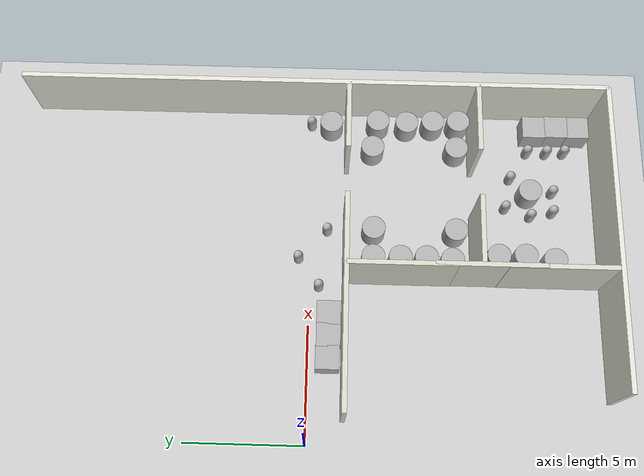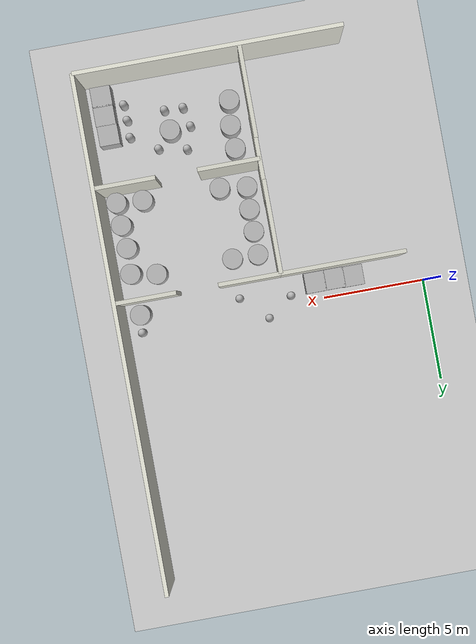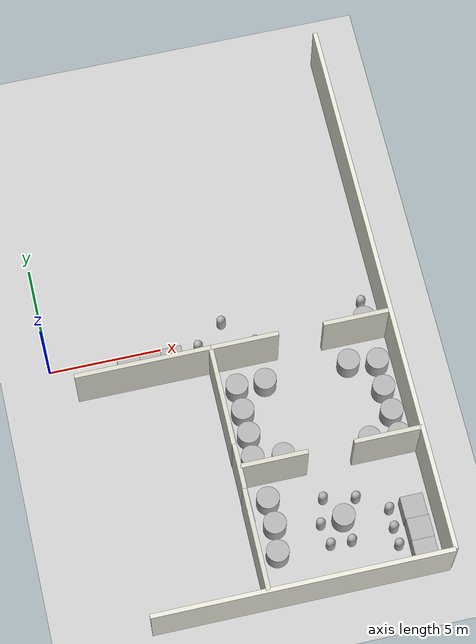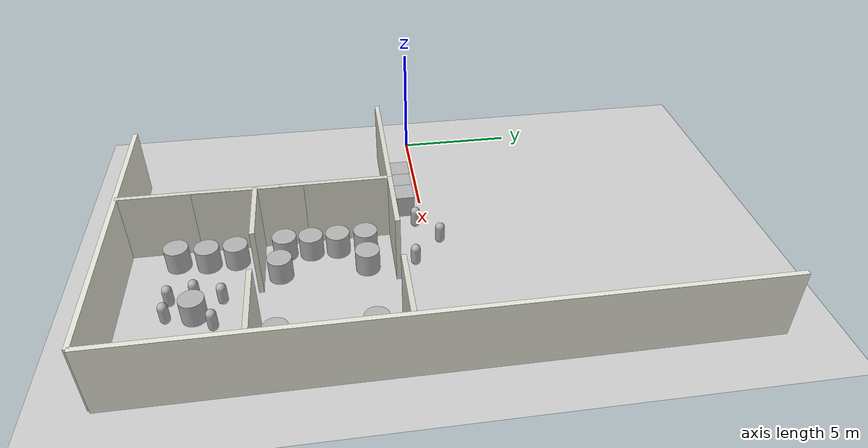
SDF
<sdf version="1.10">
 <world name="default">
  <model name="ground_plane">
   <static>true</static>
   <link name="link">
    <collision name="collision">
     <geometry><plane><normal>0 0 1</normal><size>100 100</size></plane></geometry>
    </collision>
    <visual name="visual">
     <geometry><plane><normal>0 0 1</normal><size>100 100</size></plane></geometry>
     <material>
      <ambient>0.800000012 0.800000012 0.800000012 1</ambient>
      <diffuse>0.800000012 0.800000012 0.800000012 1</diffuse>
      <specular>0.100000001 0.100000001 0.100000001 1</specular>
     </material>
    </visual>
    <inertial>
     <mass>1</mass>
     <inertia><ixx>1</ixx><ixy>0</ixy><ixz>0</ixz><iyy>1</iyy><iyz>0</iyz><izz>1</izz></inertia>
    </inertial>
   </link>
  </model>
  <model name="south_wall_east">
   <static>true</static>
   <pose>8.5 -12.5 1.5 0 0 0</pose>
   <link name="link">
    <collision name="collision"><geometry><box><size>13 0.20000000000000001 3</size></box></geometry></collision>
    <visual name="visual">
     <geometry><box><size>13 0.20000000000000001 3</size></box></geometry>
     <material>
      <ambient>0.899999976 0.899999976 0.850000024 1</ambient>
      <diffuse>0.899999976 0.899999976 0.850000024 1</diffuse>
     </material>
    </visual>
    <inertial>
     <mass>1</mass>
     <inertia><ixx>1</ixx><ixy>0</ixy><ixz>0</ixz><iyy>1</iyy><iyz>0</iyz><izz>1</izz></inertia>
    </inertial>
   </link>
  </model>
  <model name="east_wall">
   <static>true</static>
   <pose>15 0 1.5 0 0 0</pose>
   <link name="link">
    <collision name="collision"><geometry><box><size>0.20000000000000001 25 3</size></box></geometry></collision>
    <visual name="visual">
     <geometry><box><size>0.20000000000000001 25 3</size></box></geometry>
     <material>
      <ambient>0.899999976 0.899999976 0.850000024 1</ambient>
      <diffuse>0.899999976 0.899999976 0.850000024 1</diffuse>
     </material>
    </visual>
    <inertial>
     <mass>1</mass>
     <inertia><ixx>1</ixx><ixy>0</ixy><ixz>0</ixz><iyy>1</iyy><iyz>0</iyz><izz>1</izz></inertia>
    </inertial>
   </link>
  </model>
  <model name="v_wall_p7_s1">
   <static>true</static>
   <pose>7 -3.75 1.5 0 0 0</pose>
   <link name="link">
    <collision name="collision"><geometry><box><size>0.20000000000000001 4.5 3</size></box></geometry></collision>
    <visual name="visual">
     <geometry><box><size>0.20000000000000001 4.5 3</size></box></geometry>
     <material>
      <ambient>0.850000024 0.850000024 0.800000012 1</ambient>
      <diffuse>0.850000024 0.850000024 0.800000012 1</diffuse>
     </material>
    </visual>
    <inertial>
     <mass>1</mass>
     <inertia><ixx>1</ixx><ixy>0</ixy><ixz>0</ixz><iyy>1</iyy><iyz>0</iyz><izz>1</izz></inertia>
    </inertial>
   </link>
  </model>
  <model name="v_wall_p7_s2">
   <static>true</static>
   <pose>7 -10.25 1.5 0 0 0</pose>
   <link name="link">
    <collision name="collision"><geometry><box><size>0.20000000000000001 4.5 3</size></box></geometry></collision>
    <visual name="visual">
     <geometry><box><size>0.20000000000000001 4.5 3</size></box></geometry>
     <material>
      <ambient>0.850000024 0.850000024 0.800000012 1</ambient>
      <diffuse>0.850000024 0.850000024 0.800000012 1</diffuse>
     </material>
    </visual>
    <inertial>
     <mass>1</mass>
     <inertia><ixx>1</ixx><ixy>0</ixy><ixz>0</ixz><iyy>1</iyy><iyz>0</iyz><izz>1</izz></inertia>
    </inertial>
   </link>
  </model>
  <model name="h_wall_m1_5_seg2_2">
   <static>true</static>
   <pose>4 -1.5 1.5 0 0 0</pose>
   <link name="link">
    <collision name="collision"><geometry><box><size>6 0.20000000000000001 3</size></box></geometry></collision>
    <visual name="visual">
     <geometry><box><size>6 0.20000000000000001 3</size></box></geometry>
     <material>
      <ambient>0.850000024 0.850000024 0.800000012 1</ambient>
      <diffuse>0.850000024 0.850000024 0.800000012 1</diffuse>
     </material>
    </visual>
    <inertial>
     <mass>1</mass>
     <inertia><ixx>1</ixx><ixy>0</ixy><ixz>0</ixz><iyy>1</iyy><iyz>0</iyz><izz>1</izz></inertia>
    </inertial>
   </link>
  </model>
  <model name="h_wall_m1_5_seg3_1">
   <static>true</static>
   <pose>8.5 -1.5 1.5 0 0 0</pose>
   <link name="link">
    <collision name="collision"><geometry><box><size>3 0.20000000000000001 3</size></box></geometry></collision>
    <visual name="visual">
     <geometry><box><size>3 0.20000000000000001 3</size></box></geometry>
     <material>
      <ambient>0.850000024 0.850000024 0.800000012 1</ambient>
      <diffuse>0.850000024 0.850000024 0.800000012 1</diffuse>
     </material>
    </visual>
    <inertial>
     <mass>1</mass>
     <inertia><ixx>1</ixx><ixy>0</ixy><ixz>0</ixz><iyy>1</iyy><iyz>0</iyz><izz>1</izz></inertia>
    </inertial>
   </link>
  </model>
  <model name="h_wall_m1_5_seg3_2">
   <static>true</static>
   <pose>13.5 -1.5 1.5 0 0 0</pose>
   <link name="link">
    <collision name="collision"><geometry><box><size>3 0.20000000000000001 3</size></box></geometry></collision>
    <visual name="visual">
     <geometry><box><size>3 0.20000000000000001 3</size></box></geometry>
     <material>
      <ambient>0.850000024 0.850000024 0.800000012 1</ambient>
      <diffuse>0.850000024 0.850000024 0.800000012 1</diffuse>
     </material>
    </visual>
    <inertial>
     <mass>1</mass>
     <inertia><ixx>1</ixx><ixy>0</ixy><ixz>0</ixz><iyy>1</iyy><iyz>0</iyz><izz>1</izz></inertia>
    </inertial>
   </link>
  </model>
  <model name="h_wall_m7_seg2_1">
   <static>true</static>
   <pose>8.5 -7 1.5 0 0 0</pose>
   <link name="link">
    <collision name="collision"><geometry><box><size>3 0.20000000000000001 3</size></box></geometry></collision>
    <visual name="visual">
     <geometry><box><size>3 0.20000000000000001 3</size></box></geometry>
     <material>
      <ambient>0.850000024 0.850000024 0.800000012 1</ambient>
      <diffuse>0.850000024 0.850000024 0.800000012 1</diffuse>
     </material>
    </visual>
    <inertial>
     <mass>1</mass>
     <inertia><ixx>1</ixx><ixy>0</ixy><ixz>0</ixz><iyy>1</iyy><iyz>0</iyz><izz>1</izz></inertia>
    </inertial>
   </link>
  </model>
  <model name="h_wall_m7_seg2_2">
   <static>true</static>
   <pose>13.5 -7 1.5 0 0 0</pose>
   <link name="link">
    <collision name="collision"><geometry><box><size>3 0.20000000000000001 3</size></box></geometry></collision>
    <visual name="visual">
     <geometry><box><size>3 0.20000000000000001 3</size></box></geometry>
     <material>
      <ambient>0.850000024 0.850000024 0.800000012 1</ambient>
      <diffuse>0.850000024 0.850000024 0.800000012 1</diffuse>
     </material>
    </visual>
    <inertial>
     <mass>1</mass>
     <inertia><ixx>1</ixx><ixy>0</ixy><ixz>0</ixz><iyy>1</iyy><iyz>0</iyz><izz>1</izz></inertia>
    </inertial>
   </link>
  </model>
  <model name="v_wall_m7_n1_3">
   <static>true</static>
   <pose>7.0197264371027313 -7.2933113056837904 1.5 0 0 0</pose>
   <link name="link">
    <collision name="collision"><geometry><box><size>0.20000000000000001 4.5 3</size></box></geometry></collision>
    <visual name="visual">
     <geometry><box><size>0.20000000000000001 4.5 3</size></box></geometry>
     <material>
      <ambient>0.850000024 0.850000024 0.800000012 1</ambient>
      <diffuse>0.850000024 0.850000024 0.800000012 1</diffuse>
     </material>
    </visual>
    <inertial>
     <mass>1</mass>
     <inertia><ixx>1</ixx><ixy>0</ixy><ixz>0</ixz><iyy>1</iyy><iyz>0</iyz><izz>1</izz></inertia>
    </inertial>
   </link>
  </model>
  <model name="box_12">
   <static>true</static>
   <pose>14.073073331518845 -11.668733796166638 0.5 0 0 0</pose>
   <link name="box_link">
    <inertial>
     <inertia><ixx>0.16666</ixx><ixy>0</ixy><ixz>0</ixz><iyy>0.16666</iyy><iyz>0</iyz><izz>0.16666</izz></inertia>
     <mass>1</mass>
    </inertial>
    <collision name="box_collision"><geometry><box><size>1 1 1</size></box></geometry></collision>
    <visual name="box_visual">
     <geometry><box><size>1 1 1</size></box></geometry>
     <material>
      <ambient>0.300000012 0.300000012 0.300000012 1</ambient>
      <diffuse>0.699999988 0.699999988 0.699999988 1</diffuse>
      <specular>1 1 1 1</specular>
     </material>
    </visual>
   </link>
   <static>false</static>
  </model>
  <model name="box_3_5">
   <static>true</static>
   <pose>14.081306696169994 -10.735345926929272 0.5 0 0 0</pose>
   <link name="box_link">
    <inertial>
     <inertia><ixx>0.16666</ixx><ixy>0</ixy><ixz>0</ixz><iyy>0.16666</iyy><iyz>0</iyz><izz>0.16666</izz></inertia>
     <mass>1</mass>
    </inertial>
    <collision name="box_collision"><geometry><box><size>1 1 1</size></box></geometry></collision>
    <visual name="box_visual">
     <geometry><box><size>1 1 1</size></box></geometry>
     <material>
      <ambient>0.300000012 0.300000012 0.300000012 1</ambient>
      <diffuse>0.699999988 0.699999988 0.699999988 1</diffuse>
      <specular>1 1 1 1</specular>
     </material>
    </visual>
   </link>
   <static>false</static>
  </model>
  <model name="box_3_6">
   <static>true</static>
   <pose>14.056056438638677 -9.7546844689053689 0.5 0 0 0</pose>
   <link name="box_link">
    <inertial>
     <inertia><ixx>0.16666</ixx><ixy>0</ixy><ixz>0</ixz><iyy>0.16666</iyy><iyz>0</iyz><izz>0.16666</izz></inertia>
     <mass>1</mass>
    </inertial>
    <collision name="box_collision"><geometry><box><size>1 1 1</size></box></geometry></collision>
    <visual name="box_visual">
     <geometry><box><size>1 1 1</size></box></geometry>
     <material>
      <ambient>0.300000012 0.300000012 0.300000012 1</ambient>
      <diffuse>0.699999988 0.699999988 0.699999988 1</diffuse>
      <specular>1 1 1 1</specular>
     </material>
    </visual>
   </link>
   <static>false</static>
  </model>
  <model name="capsule_21">
   <static>true</static>
   <pose>13.064744238938513 -9.5094486178436206 0.5 0 0 0</pose>
   <link name="capsule_link">
    <inertial>
     <inertia>
      <ixx>0.074153999999999998</ixx>
      <ixy>0</ixy>
      <ixz>0</ixz>
      <iyy>0.074153999999999998</iyy>
      <iyz>0</iyz>
      <izz>0.018769000000000001</izz>
     </inertia>
     <mass>1</mass>
    </inertial>
    <collision name="capsule_collision">
     <geometry>
      <capsule><radius>0.20000000000000001</radius><length>0.59999999999999998</length></capsule>
     </geometry>
    </collision>
    <visual name="capsule_visual">
     <geometry>
      <capsule><radius>0.20000000000000001</radius><length>0.59999999999999998</length></capsule>
     </geometry>
     <material>
      <ambient>0.300000012 0.300000012 0.300000012 1</ambient>
      <diffuse>0.699999988 0.699999988 0.699999988 1</diffuse>
      <specular>1 1 1 1</specular>
     </material>
    </visual>
   </link>
   <static>false</static>
  </model>
  <model name="capsule_22">
   <static>true</static>
   <pose>13.056374130086542 -10.35986678764125 0.5 0 0 0</pose>
   <link name="capsule_link">
    <inertial>
     <inertia>
      <ixx>0.074153999999999998</ixx>
      <ixy>0</ixy>
      <ixz>0</ixz>
      <iyy>0.074153999999999998</iyy>
      <iyz>0</iyz>
      <izz>0.018769000000000001</izz>
     </inertia>
     <mass>1</mass>
    </inertial>
    <collision name="capsule_collision">
     <geometry>
      <capsule><radius>0.20000000000000001</radius><length>0.59999999999999998</length></capsule>
     </geometry>
    </collision>
    <visual name="capsule_visual">
     <geometry>
      <capsule><radius>0.20000000000000001</radius><length>0.59999999999999998</length></capsule>
     </geometry>
     <material>
      <ambient>0.300000012 0.300000012 0.300000012 1</ambient>
      <diffuse>0.699999988 0.699999988 0.699999988 1</diffuse>
      <specular>1 1 1 1</specular>
     </material>
    </visual>
   </link>
   <static>false</static>
  </model>
  <model name="capsule_23">
   <static>true</static>
   <pose>13.090325655017166 -11.144845383740266 0.5 0 0 0</pose>
   <link name="capsule_link">
    <inertial>
     <inertia>
      <ixx>0.074153999999999998</ixx>
      <ixy>0</ixy>
      <ixz>0</ixz>
      <iyy>0.074153999999999998</iyy>
      <iyz>0</iyz>
      <izz>0.018769000000000001</izz>
     </inertia>
     <mass>1</mass>
    </inertial>
    <collision name="capsule_collision">
     <geometry>
      <capsule><radius>0.20000000000000001</radius><length>0.59999999999999998</length></capsule>
     </geometry>
    </collision>
    <visual name="capsule_visual">
     <geometry>
      <capsule><radius>0.20000000000000001</radius><length>0.59999999999999998</length></capsule>
     </geometry>
     <material>
      <ambient>0.300000012 0.300000012 0.300000012 1</ambient>
      <diffuse>0.699999988 0.699999988 0.699999988 1</diffuse>
      <specular>1 1 1 1</specular>
     </material>
    </visual>
   </link>
   <static>false</static>
  </model>
  <model name="cylinder_3">
   <static>true</static>
   <pose>8.0501627275928787 -8.0196102178127511 0.5 0 0 0</pose>
   <link name="cylinder_link">
    <inertial>
     <inertia>
      <ixx>0.14580000000000001</ixx>
      <ixy>0</ixy>
      <ixz>0</ixz>
      <iyy>0.14580000000000001</iyy>
      <iyz>0</iyz>
      <izz>0.125</izz>
     </inertia>
     <mass>1</mass>
    </inertial>
    <collision name="cylinder_collision">
     <geometry><cylinder><radius>0.5</radius><length>1</length></cylinder></geometry>
    </collision>
    <visual name="cylinder_visual">
     <geometry><cylinder><radius>0.5</radius><length>1</length></cylinder></geometry>
     <material>
      <ambient>0.300000012 0.300000012 0.300000012 1</ambient>
      <diffuse>0.699999988 0.699999988 0.699999988 1</diffuse>
      <specular>1 1 1 1</specular>
     </material>
    </visual>
   </link>
   <static>false</static>
  </model>
  <model name="cylinder_4">
   <static>true</static>
   <pose>8.0849967758680457 -9.1682031683613072 0.5 0 0 0</pose>
   <link name="cylinder_link">
    <inertial>
     <inertia>
      <ixx>0.14580000000000001</ixx>
      <ixy>0</ixy>
      <ixz>0</ixz>
      <iyy>0.14580000000000001</iyy>
      <iyz>0</iyz>
      <izz>0.125</izz>
     </inertia>
     <mass>1</mass>
    </inertial>
    <collision name="cylinder_collision">
     <geometry><cylinder><radius>0.5</radius><length>1</length></cylinder></geometry>
    </collision>
    <visual name="cylinder_visual">
     <geometry><cylinder><radius>0.5</radius><length>1</length></cylinder></geometry>
     <material>
      <ambient>0.300000012 0.300000012 0.300000012 1</ambient>
      <diffuse>0.699999988 0.699999988 0.699999988 1</diffuse>
      <specular>1 1 1 1</specular>
     </material>
    </visual>
   </link>
   <static>false</static>
  </model>
  <model name="cylinder_5">
   <static>true</static>
   <pose>7.9213094957686234 -10.402982745516073 0.5 0 0 0</pose>
   <link name="cylinder_link">
    <inertial>
     <inertia>
      <ixx>0.14580000000000001</ixx>
      <ixy>0</ixy>
      <ixz>0</ixz>
      <iyy>0.14580000000000001</iyy>
      <iyz>0</iyz>
      <izz>0.125</izz>
     </inertia>
     <mass>1</mass>
    </inertial>
    <collision name="cylinder_collision">
     <geometry><cylinder><radius>0.5</radius><length>1</length></cylinder></geometry>
    </collision>
    <visual name="cylinder_visual">
     <geometry><cylinder><radius>0.5</radius><length>1</length></cylinder></geometry>
     <material>
      <ambient>0.300000012 0.300000012 0.300000012 1</ambient>
      <diffuse>0.699999988 0.699999988 0.699999988 1</diffuse>
      <specular>1 1 1 1</specular>
     </material>
    </visual>
   </link>
   <static>false</static>
  </model>
  <model name="cylinder_6">
   <static>true</static>
   <pose>11.043829284390847 -9.4758004201801587 0.5 0 0 0</pose>
   <link name="cylinder_link">
    <inertial>
     <inertia>
      <ixx>0.14580000000000001</ixx>
      <ixy>0</ixy>
      <ixz>0</ixz>
      <iyy>0.14580000000000001</iyy>
      <iyz>0</iyz>
      <izz>0.125</izz>
     </inertia>
     <mass>1</mass>
    </inertial>
    <collision name="cylinder_collision">
     <geometry><cylinder><radius>0.5</radius><length>1</length></cylinder></geometry>
    </collision>
    <visual name="cylinder_visual">
     <geometry><cylinder><radius>0.5</radius><length>1</length></cylinder></geometry>
     <material>
      <ambient>0.300000012 0.300000012 0.300000012 1</ambient>
      <diffuse>0.699999988 0.699999988 0.699999988 1</diffuse>
      <specular>1 1 1 1</specular>
     </material>
    </visual>
   </link>
   <static>false</static>
  </model>
  <model name="capsule_24">
   <static>true</static>
   <pose>10.232319012312779 -10.493727276224512 0.5 0 0 0</pose>
   <link name="capsule_link">
    <inertial>
     <inertia>
      <ixx>0.074153999999999998</ixx>
      <ixy>0</ixy>
      <ixz>0</ixz>
      <iyy>0.074153999999999998</iyy>
      <iyz>0</iyz>
      <izz>0.018769000000000001</izz>
     </inertia>
     <mass>1</mass>
    </inertial>
    <collision name="capsule_collision">
     <geometry>
      <capsule><radius>0.20000000000000001</radius><length>0.59999999999999998</length></capsule>
     </geometry>
    </collision>
    <visual name="capsule_visual">
     <geometry>
      <capsule><radius>0.20000000000000001</radius><length>0.59999999999999998</length></capsule>
     </geometry>
     <material>
      <ambient>0.300000012 0.300000012 0.300000012 1</ambient>
      <diffuse>0.699999988 0.699999988 0.699999988 1</diffuse>
      <specular>1 1 1 1</specular>
     </material>
    </visual>
   </link>
   <static>false</static>
  </model>
  <model name="capsule_25">
   <static>true</static>
   <pose>11.162278100604359 -10.530229651169167 0.5 0 0 0</pose>
   <link name="capsule_link">
    <inertial>
     <inertia>
      <ixx>0.074153999999999998</ixx>
      <ixy>0</ixy>
      <ixz>0</ixz>
      <iyy>0.074153999999999998</iyy>
      <iyz>0</iyz>
      <izz>0.018769000000000001</izz>
     </inertia>
     <mass>1</mass>
    </inertial>
    <collision name="capsule_collision">
     <geometry>
      <capsule><radius>0.20000000000000001</radius><length>0.59999999999999998</length></capsule>
     </geometry>
    </collision>
    <visual name="capsule_visual">
     <geometry>
      <capsule><radius>0.20000000000000001</radius><length>0.59999999999999998</length></capsule>
     </geometry>
     <material>
      <ambient>0.300000012 0.300000012 0.300000012 1</ambient>
      <diffuse>0.699999988 0.699999988 0.699999988 1</diffuse>
      <specular>1 1 1 1</specular>
     </material>
    </visual>
   </link>
   <static>false</static>
  </model>
  <model name="capsule_26">
   <static>true</static>
   <pose>10.03167538012768 -9.5282222881643257 0.5 0 0 0</pose>
   <link name="capsule_link">
    <inertial>
     <inertia>
      <ixx>0.074153999999999998</ixx>
      <ixy>0</ixy>
      <ixz>0</ixz>
      <iyy>0.074153999999999998</iyy>
      <iyz>0</iyz>
      <izz>0.018769000000000001</izz>
     </inertia>
     <mass>1</mass>
    </inertial>
    <collision name="capsule_collision">
     <geometry>
      <capsule><radius>0.20000000000000001</radius><length>0.59999999999999998</length></capsule>
     </geometry>
    </collision>
    <visual name="capsule_visual">
     <geometry>
      <capsule><radius>0.20000000000000001</radius><length>0.59999999999999998</length></capsule>
     </geometry>
     <material>
      <ambient>0.300000012 0.300000012 0.300000012 1</ambient>
      <diffuse>0.699999988 0.699999988 0.699999988 1</diffuse>
      <specular>1 1 1 1</specular>
     </material>
    </visual>
   </link>
   <static>false</static>
  </model>
  <model name="capsule_27">
   <static>true</static>
   <pose>10.390052392073933 -8.4354350797360524 0.5 0 0 0</pose>
   <link name="capsule_link">
    <inertial>
     <inertia>
      <ixx>0.074153999999999998</ixx>
      <ixy>0</ixy>
      <ixz>0</ixz>
      <iyy>0.074153999999999998</iyy>
      <iyz>0</iyz>
      <izz>0.018769000000000001</izz>
     </inertia>
     <mass>1</mass>
    </inertial>
    <collision name="capsule_collision">
     <geometry>
      <capsule><radius>0.20000000000000001</radius><length>0.59999999999999998</length></capsule>
     </geometry>
    </collision>
    <visual name="capsule_visual">
     <geometry>
      <capsule><radius>0.20000000000000001</radius><length>0.59999999999999998</length></capsule>
     </geometry>
     <material>
      <ambient>0.300000012 0.300000012 0.300000012 1</ambient>
      <diffuse>0.699999988 0.699999988 0.699999988 1</diffuse>
      <specular>1 1 1 1</specular>
     </material>
    </visual>
   </link>
   <static>false</static>
  </model>
  <model name="capsule_28">
   <static>true</static>
   <pose>11.779381703018867 -8.6991829068663513 0.5 0 0 0</pose>
   <link name="capsule_link">
    <inertial>
     <inertia>
      <ixx>0.074153999999999998</ixx>
      <ixy>0</ixy>
      <ixz>0</ixz>
      <iyy>0.074153999999999998</iyy>
      <iyz>0</iyz>
      <izz>0.018769000000000001</izz>
     </inertia>
     <mass>1</mass>
    </inertial>
    <collision name="capsule_collision">
     <geometry>
      <capsule><radius>0.20000000000000001</radius><length>0.59999999999999998</length></capsule>
     </geometry>
    </collision>
    <visual name="capsule_visual">
     <geometry>
      <capsule><radius>0.20000000000000001</radius><length>0.59999999999999998</length></capsule>
     </geometry>
     <material>
      <ambient>0.300000012 0.300000012 0.300000012 1</ambient>
      <diffuse>0.699999988 0.699999988 0.699999988 1</diffuse>
      <specular>1 1 1 1</specular>
     </material>
    </visual>
   </link>
   <static>false</static>
  </model>
  <model name="cylinder_9">
   <static>true</static>
   <pose>14.158900260925293 -4.1375298500061035 0.5 0 0 0</pose>
   <link name="cylinder_link">
    <inertial>
     <inertia>
      <ixx>0.14580000000000001</ixx>
      <ixy>0</ixy>
      <ixz>0</ixz>
      <iyy>0.14580000000000001</iyy>
      <iyz>0</iyz>
      <izz>0.125</izz>
     </inertia>
     <mass>1</mass>
    </inertial>
    <collision name="cylinder_collision">
     <geometry><cylinder><radius>0.5</radius><length>1</length></cylinder></geometry>
    </collision>
    <visual name="cylinder_visual">
     <geometry><cylinder><radius>0.5</radius><length>1</length></cylinder></geometry>
     <material>
      <ambient>0.300000012 0.300000012 0.300000012 1</ambient>
      <diffuse>0.699999988 0.699999988 0.699999988 1</diffuse>
      <specular>1 1 1 1</specular>
     </material>
    </visual>
   </link>
   <static>false</static>
  </model>
  <model name="cylinder_10">
   <static>true</static>
   <pose>14.232614517211914 -5.2915301322937012 0.5 0 0 0</pose>
   <link name="cylinder_link">
    <inertial>
     <inertia>
      <ixx>0.14580000000000001</ixx>
      <ixy>0</ixy>
      <ixz>0</ixz>
      <iyy>0.14580000000000001</iyy>
      <iyz>0</iyz>
      <izz>0.125</izz>
     </inertia>
     <mass>1</mass>
    </inertial>
    <collision name="cylinder_collision">
     <geometry><cylinder><radius>0.5</radius><length>1</length></cylinder></geometry>
    </collision>
    <visual name="cylinder_visual">
     <geometry><cylinder><radius>0.5</radius><length>1</length></cylinder></geometry>
     <material>
      <ambient>0.300000012 0.300000012 0.300000012 1</ambient>
      <diffuse>0.699999988 0.699999988 0.699999988 1</diffuse>
      <specular>1 1 1 1</specular>
     </material>
    </visual>
   </link>
   <static>false</static>
  </model>
  <model name="cylinder_11">
   <static>true</static>
   <pose>7.8997302055358887 -4.9542403221130371 0.5 0 0 0</pose>
   <link name="cylinder_link">
    <inertial>
     <inertia>
      <ixx>0.14580000000000001</ixx>
      <ixy>0</ixy>
      <ixz>0</ixz>
      <iyy>0.14580000000000001</iyy>
      <iyz>0</iyz>
      <izz>0.125</izz>
     </inertia>
     <mass>1</mass>
    </inertial>
    <collision name="cylinder_collision">
     <geometry><cylinder><radius>0.5</radius><length>1</length></cylinder></geometry>
    </collision>
    <visual name="cylinder_visual">
     <geometry><cylinder><radius>0.5</radius><length>1</length></cylinder></geometry>
     <material>
      <ambient>0.300000012 0.300000012 0.300000012 1</ambient>
      <diffuse>0.699999988 0.699999988 0.699999988 1</diffuse>
      <specular>1 1 1 1</specular>
     </material>
    </visual>
   </link>
   <static>false</static>
  </model>
  <model name="cylinder_12">
   <static>true</static>
   <pose>7.8877081871032715 -3.845789909362793 0.5 0 0 0</pose>
   <link name="cylinder_link">
    <inertial>
     <inertia>
      <ixx>0.14580000000000001</ixx>
      <ixy>0</ixy>
      <ixz>0</ixz>
      <iyy>0.14580000000000001</iyy>
      <iyz>0</iyz>
      <izz>0.125</izz>
     </inertia>
     <mass>1</mass>
    </inertial>
    <collision name="cylinder_collision">
     <geometry><cylinder><radius>0.5</radius><length>1</length></cylinder></geometry>
    </collision>
    <visual name="cylinder_visual">
     <geometry><cylinder><radius>0.5</radius><length>1</length></cylinder></geometry>
     <material>
      <ambient>0.300000012 0.300000012 0.300000012 1</ambient>
      <diffuse>0.699999988 0.699999988 0.699999988 1</diffuse>
      <specular>1 1 1 1</specular>
     </material>
    </visual>
   </link>
   <static>false</static>
  </model>
  <model name="cylinder_13">
   <static>true</static>
   <pose>14.268958569254883 -6.4152031573348225 0.5 0 0 0</pose>
   <link name="cylinder_link">
    <inertial>
     <inertia>
      <ixx>0.14580000000000001</ixx>
      <ixy>0</ixy>
      <ixz>0</ixz>
      <iyy>0.14580000000000001</iyy>
      <iyz>0</iyz>
      <izz>0.125</izz>
     </inertia>
     <mass>1</mass>
    </inertial>
    <collision name="cylinder_collision">
     <geometry><cylinder><radius>0.5</radius><length>1</length></cylinder></geometry>
    </collision>
    <visual name="cylinder_visual">
     <geometry><cylinder><radius>0.5</radius><length>1</length></cylinder></geometry>
     <material>
      <ambient>0.300000012 0.300000012 0.300000012 1</ambient>
      <diffuse>0.699999988 0.699999988 0.699999988 1</diffuse>
      <specular>1 1 1 1</specular>
     </material>
    </visual>
   </link>
   <static>false</static>
  </model>
  <model name="cylinder_14">
   <static>true</static>
   <pose>12.977344621161496 -6.3133784102681494 0.5 0 0 0</pose>
   <link name="cylinder_link">
    <inertial>
     <inertia>
      <ixx>0.14580000000000001</ixx>
      <ixy>0</ixy>
      <ixz>0</ixz>
      <iyy>0.14580000000000001</iyy>
      <iyz>0</iyz>
      <izz>0.125</izz>
     </inertia>
     <mass>1</mass>
    </inertial>
    <collision name="cylinder_collision">
     <geometry><cylinder><radius>0.5</radius><length>1</length></cylinder></geometry>
    </collision>
    <visual name="cylinder_visual">
     <geometry><cylinder><radius>0.5</radius><length>1</length></cylinder></geometry>
     <material>
      <ambient>0.300000012 0.300000012 0.300000012 1</ambient>
      <diffuse>0.699999988 0.699999988 0.699999988 1</diffuse>
      <specular>1 1 1 1</specular>
     </material>
    </visual>
   </link>
   <static>false</static>
  </model>
  <model name="cylinder_15">
   <static>true</static>
   <pose>14.211982195486677 -2.8589169850533498 0.5 0 0 0</pose>
   <link name="cylinder_link">
    <inertial>
     <inertia>
      <ixx>0.14580000000000001</ixx>
      <ixy>0</ixy>
      <ixz>0</ixz>
      <iyy>0.14580000000000001</iyy>
      <iyz>0</iyz>
      <izz>0.125</izz>
     </inertia>
     <mass>1</mass>
    </inertial>
    <collision name="cylinder_collision">
     <geometry><cylinder><radius>0.5</radius><length>1</length></cylinder></geometry>
    </collision>
    <visual name="cylinder_visual">
     <geometry><cylinder><radius>0.5</radius><length>1</length></cylinder></geometry>
     <material>
      <ambient>0.300000012 0.300000012 0.300000012 1</ambient>
      <diffuse>0.699999988 0.699999988 0.699999988 1</diffuse>
      <specular>1 1 1 1</specular>
     </material>
    </visual>
   </link>
   <static>false</static>
  </model>
  <model name="cylinder_16">
   <static>true</static>
   <pose>12.945903256641362 -2.6314177905810268 0.5 0 0 0</pose>
   <link name="cylinder_link">
    <inertial>
     <inertia>
      <ixx>0.14580000000000001</ixx>
      <ixy>0</ixy>
      <ixz>0</ixz>
      <iyy>0.14580000000000001</iyy>
      <iyz>0</iyz>
      <izz>0.125</izz>
     </inertia>
     <mass>1</mass>
    </inertial>
    <collision name="cylinder_collision">
     <geometry><cylinder><radius>0.5</radius><length>1</length></cylinder></geometry>
    </collision>
    <visual name="cylinder_visual">
     <geometry><cylinder><radius>0.5</radius><length>1</length></cylinder></geometry>
     <material>
      <ambient>0.300000012 0.300000012 0.300000012 1</ambient>
      <diffuse>0.699999988 0.699999988 0.699999988 1</diffuse>
      <specular>1 1 1 1</specular>
     </material>
    </visual>
   </link>
   <static>false</static>
  </model>
  <model name="cylinder_17">
   <static>true</static>
   <pose>7.8226368271812952 -6.0493471493061328 0.5 0 0 0</pose>
   <link name="cylinder_link">
    <inertial>
     <inertia>
      <ixx>0.14580000000000001</ixx>
      <ixy>0</ixy>
      <ixz>0</ixz>
      <iyy>0.14580000000000001</iyy>
      <iyz>0</iyz>
      <izz>0.125</izz>
     </inertia>
     <mass>1</mass>
    </inertial>
    <collision name="cylinder_collision">
     <geometry><cylinder><radius>0.5</radius><length>1</length></cylinder></geometry>
    </collision>
    <visual name="cylinder_visual">
     <geometry><cylinder><radius>0.5</radius><length>1</length></cylinder></geometry>
     <material>
      <ambient>0.300000012 0.300000012 0.300000012 1</ambient>
      <diffuse>0.699999988 0.699999988 0.699999988 1</diffuse>
      <specular>1 1 1 1</specular>
     </material>
    </visual>
   </link>
   <static>false</static>
  </model>
  <model name="cylinder_18">
   <static>true</static>
   <pose>9.1533691017740821 -6.2241319632907848 0.5 0 0 0</pose>
   <link name="cylinder_link">
    <inertial>
     <inertia>
      <ixx>0.14580000000000001</ixx>
      <ixy>0</ixy>
      <ixz>0</ixz>
      <iyy>0.14580000000000001</iyy>
      <iyz>0</iyz>
      <izz>0.125</izz>
     </inertia>
     <mass>1</mass>
    </inertial>
    <collision name="cylinder_collision">
     <geometry><cylinder><radius>0.5</radius><length>1</length></cylinder></geometry>
    </collision>
    <visual name="cylinder_visual">
     <geometry><cylinder><radius>0.5</radius><length>1</length></cylinder></geometry>
     <material>
      <ambient>0.300000012 0.300000012 0.300000012 1</ambient>
      <diffuse>0.699999988 0.699999988 0.699999988 1</diffuse>
      <specular>1 1 1 1</specular>
     </material>
    </visual>
   </link>
   <static>false</static>
  </model>
  <model name="cylinder_19">
   <static>true</static>
   <pose>7.8905374164155386 -2.6828820610834816 0.5 0 0 0</pose>
   <link name="cylinder_link">
    <inertial>
     <inertia>
      <ixx>0.14580000000000001</ixx>
      <ixy>0</ixy>
      <ixz>0</ixz>
      <iyy>0.14580000000000001</iyy>
      <iyz>0</iyz>
      <izz>0.125</izz>
     </inertia>
     <mass>1</mass>
    </inertial>
    <collision name="cylinder_collision">
     <geometry><cylinder><radius>0.5</radius><length>1</length></cylinder></geometry>
    </collision>
    <visual name="cylinder_visual">
     <geometry><cylinder><radius>0.5</radius><length>1</length></cylinder></geometry>
     <material>
      <ambient>0.300000012 0.300000012 0.300000012 1</ambient>
      <diffuse>0.699999988 0.699999988 0.699999988 1</diffuse>
      <specular>1 1 1 1</specular>
     </material>
    </visual>
   </link>
   <static>false</static>
  </model>
  <model name="cylinder_20">
   <static>true</static>
   <pose>9.1606431253359197 -2.6968057470853637 0.5 0 0 0</pose>
   <link name="cylinder_link">
    <inertial>
     <inertia>
      <ixx>0.14580000000000001</ixx>
      <ixy>0</ixy>
      <ixz>0</ixz>
      <iyy>0.14580000000000001</iyy>
      <iyz>0</iyz>
      <izz>0.125</izz>
     </inertia>
     <mass>1</mass>
    </inertial>
    <collision name="cylinder_collision">
     <geometry><cylinder><radius>0.5</radius><length>1</length></cylinder></geometry>
    </collision>
    <visual name="cylinder_visual">
     <geometry><cylinder><radius>0.5</radius><length>1</length></cylinder></geometry>
     <material>
      <ambient>0.300000012 0.300000012 0.300000012 1</ambient>
      <diffuse>0.699999988 0.699999988 0.699999988 1</diffuse>
      <specular>1 1 1 1</specular>
     </material>
    </visual>
   </link>
   <static>false</static>
  </model>
  <model name="cylinder_21">
   <static>true</static>
   <pose>14.104665057509658 -0.79541571133822542 0.5 0 0 0</pose>
   <link name="cylinder_link">
    <inertial>
     <inertia>
      <ixx>0.14580000000000001</ixx>
      <ixy>0</ixy>
      <ixz>0</ixz>
      <iyy>0.14580000000000001</iyy>
      <iyz>0</iyz>
      <izz>0.125</izz>
     </inertia>
     <mass>1</mass>
    </inertial>
    <collision name="cylinder_collision">
     <geometry><cylinder><radius>0.5</radius><length>1</length></cylinder></geometry>
    </collision>
    <visual name="cylinder_visual">
     <geometry><cylinder><radius>0.5</radius><length>1</length></cylinder></geometry>
     <material>
      <ambient>0.300000012 0.300000012 0.300000012 1</ambient>
      <diffuse>0.699999988 0.699999988 0.699999988 1</diffuse>
      <specular>1 1 1 1</specular>
     </material>
    </visual>
   </link>
   <static>false</static>
  </model>
  <model name="capsule_38">
   <static>true</static>
   <pose>14.194023380417505 0.081140383250723147 0.5 0 0 0</pose>
   <link name="capsule_link">
    <inertial>
     <inertia>
      <ixx>0.074153999999999998</ixx>
      <ixy>0</ixy>
      <ixz>0</ixz>
      <iyy>0.074153999999999998</iyy>
      <iyz>0</iyz>
      <izz>0.018769000000000001</izz>
     </inertia>
     <mass>1</mass>
    </inertial>
    <collision name="capsule_collision">
     <geometry>
      <capsule><radius>0.20000000000000001</radius><length>0.59999999999999998</length></capsule>
     </geometry>
    </collision>
    <visual name="capsule_visual">
     <geometry>
      <capsule><radius>0.20000000000000001</radius><length>0.59999999999999998</length></capsule>
     </geometry>
     <material>
      <ambient>0.300000012 0.300000012 0.300000012 1</ambient>
      <diffuse>0.699999988 0.699999988 0.699999988 1</diffuse>
      <specular>1 1 1 1</specular>
     </material>
    </visual>
   </link>
   <static>false</static>
  </model>
  <model name="capsule_39">
   <static>true</static>
   <pose>9.1675946226729614 -0.71528049761147461 0.5 0 0 0</pose>
   <link name="capsule_link">
    <inertial>
     <inertia>
      <ixx>0.074153999999999998</ixx>
      <ixy>0</ixy>
      <ixz>0</ixz>
      <iyy>0.074153999999999998</iyy>
      <iyz>0</iyz>
      <izz>0.018769000000000001</izz>
     </inertia>
     <mass>1</mass>
    </inertial>
    <collision name="capsule_collision">
     <geometry>
      <capsule><radius>0.20000000000000001</radius><length>0.59999999999999998</length></capsule>
     </geometry>
    </collision>
    <visual name="capsule_visual">
     <geometry>
      <capsule><radius>0.20000000000000001</radius><length>0.59999999999999998</length></capsule>
     </geometry>
     <material>
      <ambient>0.300000012 0.300000012 0.300000012 1</ambient>
      <diffuse>0.699999988 0.699999988 0.699999988 1</diffuse>
      <specular>1 1 1 1</specular>
     </material>
    </visual>
   </link>
   <static>false</static>
  </model>
  <model name="capsule_40">
   <static>true</static>
   <pose>7.8921537142289733 0.49312871069406738 0.5 0 0 0</pose>
   <link name="capsule_link">
    <inertial>
     <inertia>
      <ixx>0.074153999999999998</ixx>
      <ixy>0</ixy>
      <ixz>0</ixz>
      <iyy>0.074153999999999998</iyy>
      <iyz>0</iyz>
      <izz>0.018769000000000001</izz>
     </inertia>
     <mass>1</mass>
    </inertial>
    <collision name="capsule_collision">
     <geometry>
      <capsule><radius>0.20000000000000001</radius><length>0.59999999999999998</length></capsule>
     </geometry>
    </collision>
    <visual name="capsule_visual">
     <geometry>
      <capsule><radius>0.20000000000000001</radius><length>0.59999999999999998</length></capsule>
     </geometry>
     <material>
      <ambient>0.300000012 0.300000012 0.300000012 1</ambient>
      <diffuse>0.699999988 0.699999988 0.699999988 1</diffuse>
      <specular>1 1 1 1</specular>
     </material>
    </visual>
   </link>
   <static>false</static>
  </model>
  <model name="capsule_41">
   <static>true</static>
   <pose>6.6489490011881429 -0.40449055287976954 0.5 0 0 0</pose>
   <link name="capsule_link">
    <inertial>
     <inertia>
      <ixx>0.074153999999999998</ixx>
      <ixy>0</ixy>
      <ixz>0</ixz>
      <iyy>0.074153999999999998</iyy>
      <iyz>0</iyz>
      <izz>0.018769000000000001</izz>
     </inertia>
     <mass>1</mass>
    </inertial>
    <collision name="capsule_collision">
     <geometry>
      <capsule><radius>0.20000000000000001</radius><length>0.59999999999999998</length></capsule>
     </geometry>
    </collision>
    <visual name="capsule_visual">
     <geometry>
      <capsule><radius>0.20000000000000001</radius><length>0.59999999999999998</length></capsule>
     </geometry>
     <material>
      <ambient>0.300000012 0.300000012 0.300000012 1</ambient>
      <diffuse>0.699999988 0.699999988 0.699999988 1</diffuse>
      <specular>1 1 1 1</specular>
     </material>
    </visual>
   </link>
   <static>false</static>
  </model>
  <model name="box_24">
   <static>true</static>
   <pose>5.3831568444545388 -0.84894738385379354 0.5 0 0 0</pose>
   <link name="box_link">
    <inertial>
     <inertia><ixx>0.16666</ixx><ixy>0</ixy><ixz>0</ixz><iyy>0.16666</iyy><iyz>0</iyz><izz>0.16666</izz></inertia>
     <mass>1</mass>
    </inertial>
    <collision name="box_collision"><geometry><box><size>1 1 1</size></box></geometry></collision>
    <visual name="box_visual">
     <geometry><box><size>1 1 1</size></box></geometry>
     <material>
      <ambient>0.300000012 0.300000012 0.300000012 1</ambient>
      <diffuse>0.699999988 0.699999988 0.699999988 1</diffuse>
      <specular>1 1 1 1</specular>
     </material>
    </visual>
   </link>
   <static>false</static>
  </model>
  <model name="box_25">
   <static>true</static>
   <pose>4.4359102249145508 -0.85427588224411011 0.5 0 0 0</pose>
   <link name="box_link">
    <inertial>
     <inertia><ixx>0.16666</ixx><ixy>0</ixy><ixz>0</ixz><iyy>0.16666</iyy><iyz>0</iyz><izz>0.16666</izz></inertia>
     <mass>1</mass>
    </inertial>
    <collision name="box_collision"><geometry><box><size>1 1 1</size></box></geometry></collision>
    <visual name="box_visual">
     <geometry><box><size>1 1 1</size></box></geometry>
     <material>
      <ambient>0.300000012 0.300000012 0.300000012 1</ambient>
      <diffuse>0.699999988 0.699999988 0.699999988 1</diffuse>
      <specular>1 1 1 1</specular>
     </material>
    </visual>
   </link>
   <static>false</static>
  </model>
  <model name="box_26">
   <static>true</static>
   <pose>3.4912588909872166 -0.83126091085679032 0.5 0 0 0</pose>
   <link name="box_link">
    <inertial>
     <inertia><ixx>0.16666</ixx><ixy>0</ixy><ixz>0</ixz><iyy>0.16666</iyy><iyz>0</iyz><izz>0.16666</izz></inertia>
     <mass>1</mass>
    </inertial>
    <collision name="box_collision"><geometry><box><size>1 1 1</size></box></geometry></collision>
    <visual name="box_visual">
     <geometry><box><size>1 1 1</size></box></geometry>
     <material>
      <ambient>0.300000012 0.300000012 0.300000012 1</ambient>
      <diffuse>0.699999988 0.699999988 0.699999988 1</diffuse>
      <specular>1 1 1 1</specular>
     </material>
    </visual>
   </link>
   <static>false</static>
  </model>
 </world>
</sdf>
